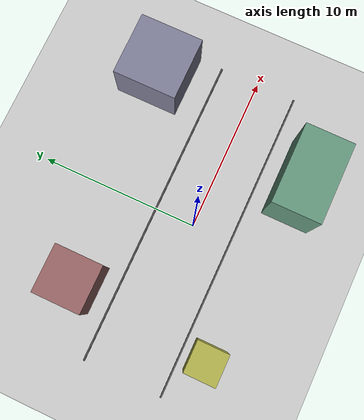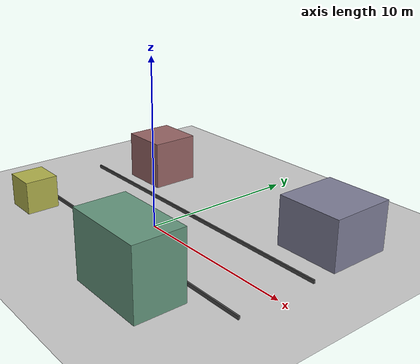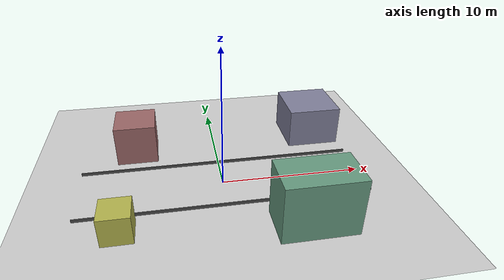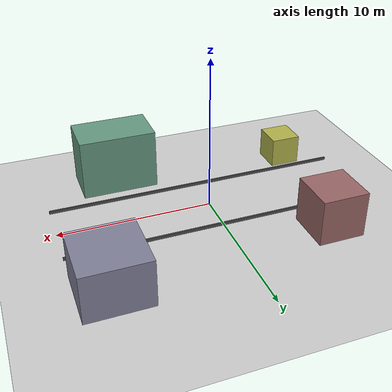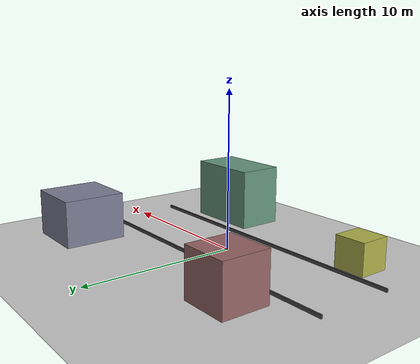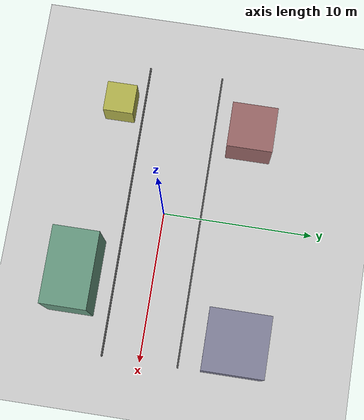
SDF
<?xml version="1.0"?>
<sdf version="1.7">
  <world name="city_street">
    <physics name="1ms" type="ode">
      <real_time_update_rate>1000</real_time_update_rate>
      <max_step_size>0.001</max_step_size>
    </physics>
    <plugin
      filename="libignition-gazebo-physics-system.so"
      name="ignition::gazebo::systems::Physics">
    </plugin>
    <plugin
      filename="libignition-gazebo-user-commands-system.so"
      name="ignition::gazebo::systems::UserCommands">
    </plugin>
    <plugin
      filename="libignition-gazebo-scene-broadcaster-system.so"
      name="ignition::gazebo::systems::SceneBroadcaster">
    </plugin>
    <include>
      <uri>https://fuel.gazebosim.org/1.0/OpenRobotics/models/Ground Plane</uri>
    </include>
    <include>
      <uri>https://fuel.gazebosim.org/1.0/OpenRobotics/models/Sun</uri>
    </include>

    <!-- Buildings -->
    <model name="building_1">
      <static>true</static>
      <pose>8.0 6.0 1.5 0 0 0</pose>
      <link name="link">
        <collision name="c">
          <geometry>
            <box>
              <size>4.0 4.0 3.0</size>
            </box>
          </geometry>
        </collision>
        <visual name="v">
          <geometry>
            <box>
              <size>4.0 4.0 3.0</size>
            </box>
          </geometry>
          <material>
            <ambient>0.5 0.5 0.6 1</ambient>
          </material>
        </visual>
      </link>
    </model>

    <model name="building_2">
      <static>true</static>
      <pose>-6.0 5.0 1.5 0 0 0</pose>
      <link name="link">
        <collision name="c">
          <geometry>
            <box>
              <size>3.0 3.0 3.0</size>
            </box>
          </geometry>
        </collision>
        <visual name="v">
          <geometry>
            <box>
              <size>3.0 3.0 3.0</size>
            </box>
          </geometry>
          <material>
            <ambient>0.6 0.4 0.4 1</ambient>
          </material>
        </visual>
      </link>
    </model>

    <model name="building_3">
      <static>true</static>
      <pose>5.0 -5.0 2.0 0 0 0</pose>
      <link name="link">
        <collision name="c">
          <geometry>
            <box>
              <size>5.0 3.0 4.0</size>
            </box>
          </geometry>
        </collision>
        <visual name="v">
          <geometry>
            <box>
              <size>5.0 3.0 4.0</size>
            </box>
          </geometry>
          <material>
            <ambient>0.4 0.6 0.5 1</ambient>
          </material>
        </visual>
      </link>
    </model>

    <model name="building_4">
      <static>true</static>
      <pose>-7.0 -4.0 1.0 0 0 0</pose>
      <link name="link">
        <collision name="c">
          <geometry>
            <box>
              <size>2.0 2.0 2.0</size>
            </box>
          </geometry>
        </collision>
        <visual name="v">
          <geometry>
            <box>
              <size>2.0 2.0 2.0</size>
            </box>
          </geometry>
          <material>
            <ambient>0.7 0.7 0.3 1</ambient>
          </material>
        </visual>
      </link>
    </model>

    <!-- Curbs -->
    <model name="curb_1">
      <static>true</static>
      <pose>0 2.5 0.1 0 0 0</pose>
      <link name="link">
        <collision name="c">
          <geometry>
            <box>
              <size>20 0.1 0.2</size>
            </box>
          </geometry>
        </collision>
        <visual name="v">
          <geometry>
            <box>
              <size>20 0.1 0.2</size>
            </box>
          </geometry>
          <material>
            <ambient>0.3 0.3 0.3 1</ambient>
          </material>
        </visual>
      </link>
    </model>

    <model name="curb_2">
      <static>true</static>
      <pose>0 -2.5 0.1 0 0 0</pose>
      <link name="link">
        <collision name="c">
          <geometry>
            <box>
              <size>20 0.1 0.2</size>
            </box>
          </geometry>
        </collision>
        <visual name="v">
          <geometry>
            <box>
              <size>20 0.1 0.2</size>
            </box>
          </geometry>
          <material>
            <ambient>0.3 0.3 0.3 1</ambient>
          </material>
        </visual>
      </link>
    </model>
  </world>
</sdf>
